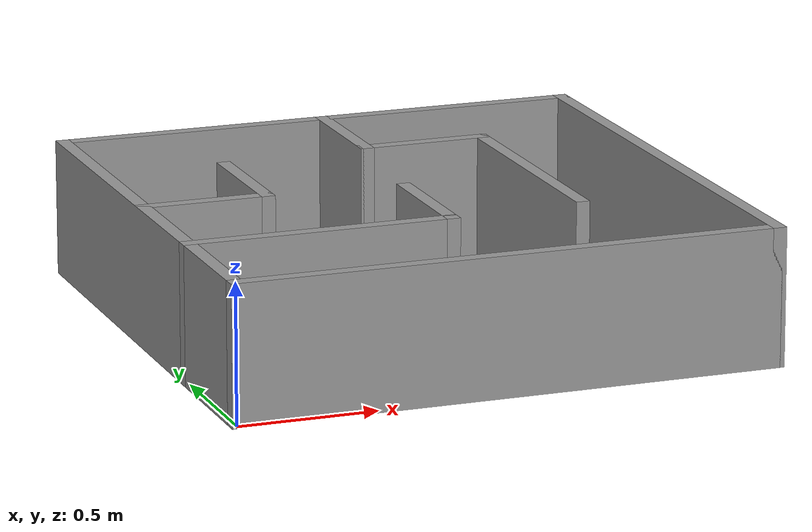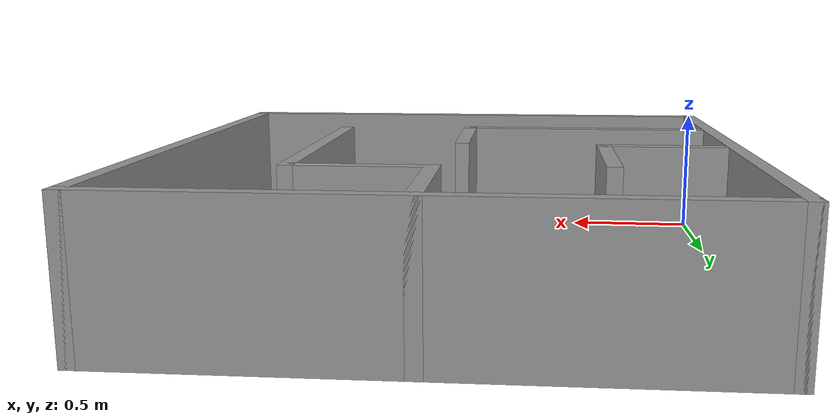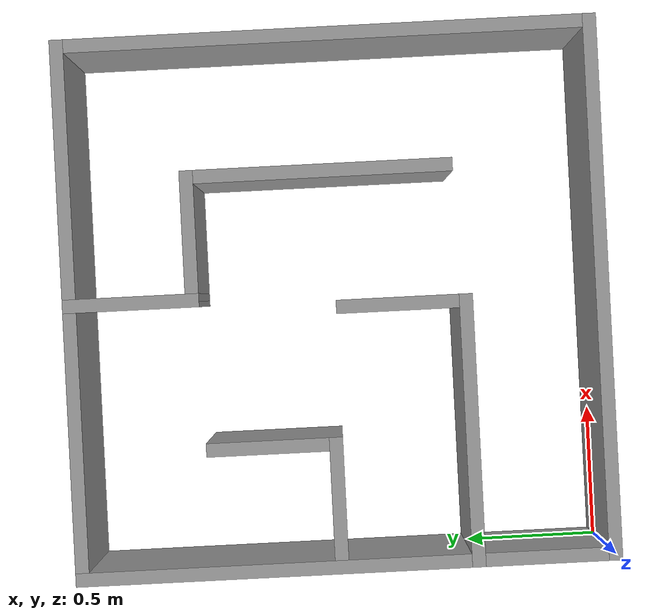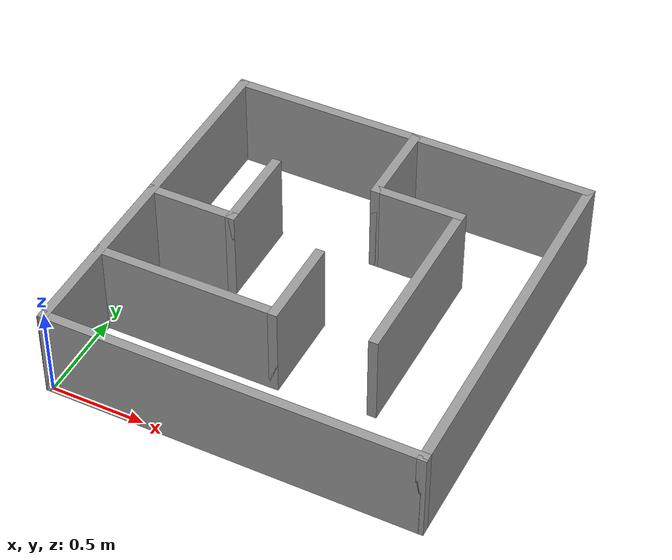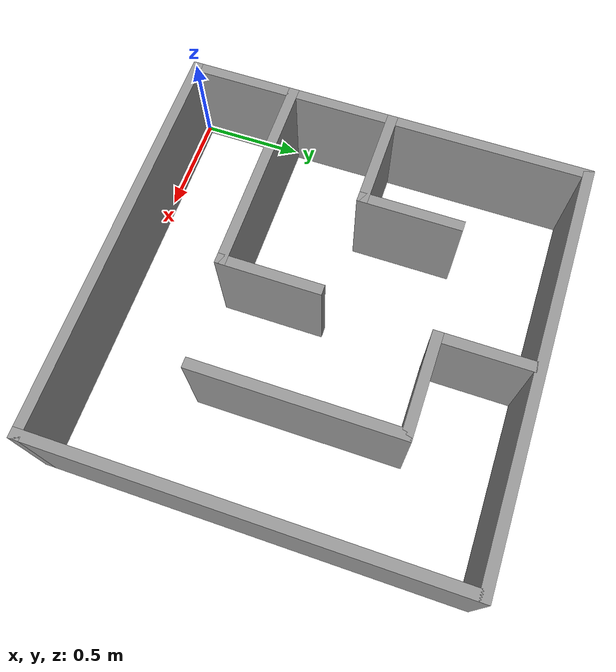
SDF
<?xml version='1.0'?>
<sdf version='1.7'>
  <model name='turtlebot3_maze'>
    <pose>0.975 0.975 0 0 -0 0</pose>
    <link name='Wall_1'>
      <collision name='Wall_1_Collision'>
        <geometry>
          <box>
            <size>2 0.05 0.5</size>
          </box>
        </geometry>
        <pose>0 0 0.25 0 -0 0</pose>
      </collision>
      <visual name='Wall_1_Visual'>
        <pose>0 0 0.25 0 -0 0</pose>
        <geometry>
          <box>
            <size>2 0.05 0.5</size>
          </box>
        </geometry>
        <material>
          <script>
            <uri>file://media/materials/scripts/gazebo.material</uri>
            <name>Gazebo/Grey</name>
          </script>
          <ambient>1 1 1 1</ambient>
        </material>
        <meta>
          <layer>0</layer>
        </meta>
      </visual>
      <pose>0 -0.975 0 0 -0 0</pose>
    </link>
    <link name='Wall_11'>
      <collision name='Wall_11_Collision'>
        <geometry>
          <box>
            <size>1 0.05 0.5</size>
          </box>
        </geometry>
        <pose>0 0 0.25 0 -0 0</pose>
      </collision>
      <visual name='Wall_11_Visual'>
        <pose>0 0 0.25 0 -0 0</pose>
        <geometry>
          <box>
            <size>1 0.05 0.5</size>
          </box>
        </geometry>
        <material>
          <script>
            <uri>file://media/materials/scripts/gazebo.material</uri>
            <name>Gazebo/Grey</name>
          </script>
          <ambient>1 1 1 1</ambient>
        </material>
        <meta>
          <layer>0</layer>
        </meta>
      </visual>
      <pose>-0.5 -0.475 0 0 -0 0</pose>
    </link>
    <link name='Wall_12'>
      <collision name='Wall_12_Collision'>
        <geometry>
          <box>
            <size>0.5 0.05 0.5</size>
          </box>
        </geometry>
        <pose>0 0 0.25 0 -0 0</pose>
      </collision>
      <visual name='Wall_12_Visual'>
        <pose>0 0 0.25 0 -0 0</pose>
        <geometry>
          <box>
            <size>0.5 0.05 0.5</size>
          </box>
        </geometry>
        <material>
          <script>
            <uri>file://media/materials/scripts/gazebo.material</uri>
            <name>Gazebo/Grey</name>
          </script>
          <ambient>1 1 1 1</ambient>
        </material>
        <meta>
          <layer>0</layer>
        </meta>
      </visual>
      <pose>-0.025 -0.25 0 0 -0 1.5708</pose>
    </link>
    <link name='Wall_14'>
      <collision name='Wall_14_Collision'>
        <geometry>
          <box>
            <size>0.5 0.05 0.5</size>
          </box>
        </geometry>
        <pose>0 0 0.25 0 -0 0</pose>
      </collision>
      <visual name='Wall_14_Visual'>
        <pose>0 0 0.25 0 -0 0</pose>
        <geometry>
          <box>
            <size>0.5 0.05 0.5</size>
          </box>
        </geometry>
        <material>
          <script>
            <uri>file://media/materials/scripts/gazebo.material</uri>
            <name>Gazebo/Grey</name>
          </script>
          <ambient>1 1 1 1</ambient>
        </material>
        <meta>
          <layer>0</layer>
        </meta>
      </visual>
      <pose>0.025 0.75 0 0 -0 -1.5708</pose>
    </link>
    <link name='Wall_15'>
      <collision name='Wall_15_Collision'>
        <geometry>
          <box>
            <size>0.5 0.05 0.5</size>
          </box>
        </geometry>
        <pose>0 0 0.25 0 -0 0</pose>
      </collision>
      <visual name='Wall_15_Visual'>
        <pose>0 0 0.25 0 -0 0</pose>
        <geometry>
          <box>
            <size>0.5 0.05 0.5</size>
          </box>
        </geometry>
        <material>
          <script>
            <uri>file://media/materials/scripts/gazebo.material</uri>
            <name>Gazebo/Grey</name>
          </script>
          <ambient>1 1 1 1</ambient>
        </material>
        <meta>
          <layer>0</layer>
        </meta>
      </visual>
      <pose>0.25 0.525 0 0 -0 0</pose>
    </link>
    <link name='Wall_16'>
      <collision name='Wall_16_Collision'>
        <geometry>
          <box>
            <size>1 0.05 0.5</size>
          </box>
        </geometry>
        <pose>0 0 0.25 0 -0 0</pose>
      </collision>
      <visual name='Wall_16_Visual'>
        <pose>0 0 0.25 0 -0 0</pose>
        <geometry>
          <box>
            <size>1 0.05 0.5</size>
          </box>
        </geometry>
        <material>
          <script>
            <uri>file://media/materials/scripts/gazebo.material</uri>
            <name>Gazebo/Grey</name>
          </script>
          <ambient>1 1 1 1</ambient>
        </material>
        <meta>
          <layer>0</layer>
        </meta>
      </visual>
      <pose>0.475 0.05 0 0 -0 -1.5708</pose>
    </link>
    <link name='Wall_3'>
      <collision name='Wall_3_Collision'>
        <geometry>
          <box>
            <size>2 0.05 0.5</size>
          </box>
        </geometry>
        <pose>0 0 0.25 0 -0 0</pose>
      </collision>
      <visual name='Wall_3_Visual'>
        <pose>0 0 0.25 0 -0 0</pose>
        <geometry>
          <box>
            <size>2 0.05 0.5</size>
          </box>
        </geometry>
        <material>
          <script>
            <uri>file://media/materials/scripts/gazebo.material</uri>
            <name>Gazebo/Grey</name>
          </script>
          <ambient>1 1 1 1</ambient>
        </material>
        <meta>
          <layer>0</layer>
        </meta>
      </visual>
      <pose>-0.975 0 0 0 -0 1.5708</pose>
    </link>
    <link name='Wall_4'>
      <collision name='Wall_4_Collision'>
        <geometry>
          <box>
            <size>2 0.05 0.5</size>
          </box>
        </geometry>
        <pose>0 0 0.25 0 -0 0</pose>
      </collision>
      <visual name='Wall_4_Visual'>
        <pose>0 0 0.25 0 -0 0</pose>
        <geometry>
          <box>
            <size>2 0.05 0.5</size>
          </box>
        </geometry>
        <material>
          <script>
            <uri>file://media/materials/scripts/gazebo.material</uri>
            <name>Gazebo/Grey</name>
          </script>
          <ambient>1 1 1 1</ambient>
        </material>
        <meta>
          <layer>0</layer>
        </meta>
      </visual>
      <pose>0 0.975 0 0 -0 0</pose>
    </link>
    <link name='Wall_5'>
      <collision name='Wall_5_Collision'>
        <geometry>
          <box>
            <size>2 0.05 0.5</size>
          </box>
        </geometry>
        <pose>0 0 0.25 0 -0 0</pose>
      </collision>
      <visual name='Wall_5_Visual'>
        <pose>0 0 0.25 0 -0 0</pose>
        <geometry>
          <box>
            <size>2 0.05 0.5</size>
          </box>
        </geometry>
        <material>
          <script>
            <uri>file://media/materials/scripts/gazebo.material</uri>
            <name>Gazebo/Grey</name>
          </script>
          <ambient>1 1 1 1</ambient>
        </material>
        <meta>
          <layer>0</layer>
        </meta>
      </visual>
      <pose>0.975 0 0 0 -0 -1.5708</pose>
    </link>
    <link name='Wall_8'>
      <collision name='Wall_8_Collision'>
        <geometry>
          <box>
            <size>0.5 0.05 0.5</size>
          </box>
        </geometry>
        <pose>0 0 0.25 0 -0 0</pose>
      </collision>
      <visual name='Wall_8_Visual'>
        <pose>0 0 0.25 0 -0 0</pose>
        <geometry>
          <box>
            <size>0.5 0.05 0.5</size>
          </box>
        </geometry>
        <material>
          <script>
            <uri>file://media/materials/scripts/gazebo.material</uri>
            <name>Gazebo/Grey</name>
          </script>
          <ambient>1 1 1 1</ambient>
        </material>
        <meta>
          <layer>0</layer>
        </meta>
      </visual>
      <pose>-0.75 0.025 0 0 -0 0</pose>
    </link>
    <link name='Wall_9'>
      <collision name='Wall_9_Collision'>
        <geometry>
          <box>
            <size>0.5 0.05 0.5</size>
          </box>
        </geometry>
        <pose>0 0 0.25 0 -0 0</pose>
      </collision>
      <visual name='Wall_9_Visual'>
        <pose>0 0 0.25 0 -0 0</pose>
        <geometry>
          <box>
            <size>0.5 0.05 0.5</size>
          </box>
        </geometry>
        <material>
          <script>
            <uri>file://media/materials/scripts/gazebo.material</uri>
            <name>Gazebo/Grey</name>
          </script>
          <ambient>1 1 1 1</ambient>
        </material>
        <meta>
          <layer>0</layer>
        </meta>
      </visual>
      <pose>-0.525 0.25 0 0 -0 1.5708</pose>
    </link>
    <static>1</static>
  </model>
</sdf>
